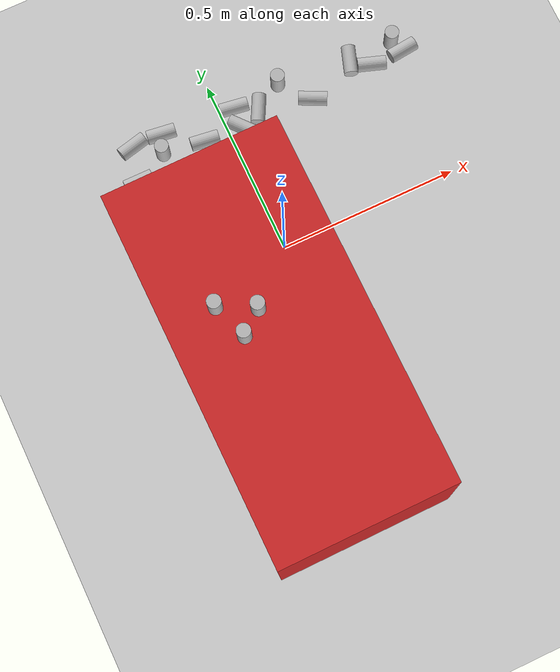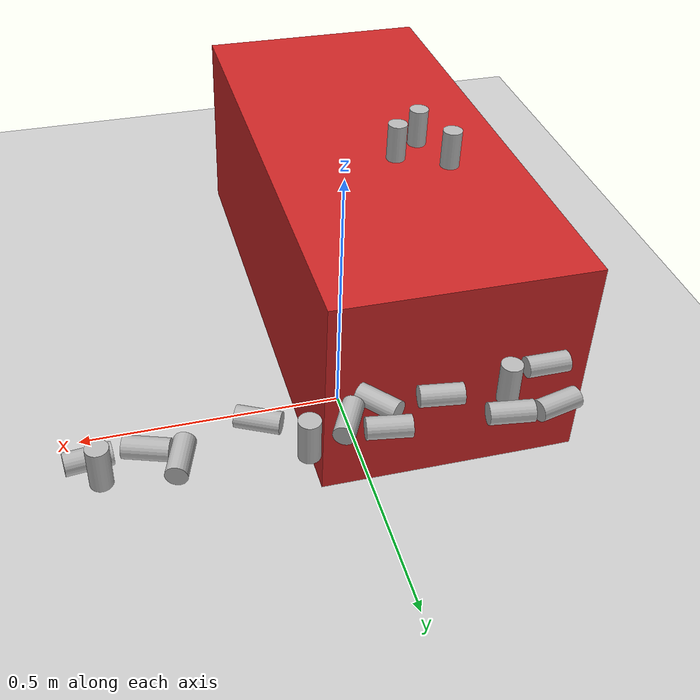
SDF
<sdf version="1.7">
 <world name="default">
  <model name="ground_plane">
   <static>1</static>
   <link name="link">
    <collision name="collision">
     <geometry><plane><normal>0 0 1</normal><size>100 100</size></plane></geometry>
     <surface>
      <contact><collide_bitmask>65535</collide_bitmask></contact>
      <friction><ode><mu>100</mu><mu2>50</mu2></ode></friction>
     </surface>
    </collision>
    <visual name="visual">
     <cast_shadows>0</cast_shadows>
     <geometry><plane><normal>0 0 1</normal><size>100 100</size></plane></geometry>
     <material>
      <script><uri>file://media/materials/scripts/gazebo.material</uri><name>Gazebo/Grey</name></script>
     </material>
    </visual>
   </link>
  </model>
  <model name="robot_station">
   <static>1</static>
   <link name="link">
    <inertial>
     <mass>100</mass>
     <inertia>
      <ixx>0.166667</ixx>
      <ixy>0</ixy>
      <ixz>0</ixz>
      <iyy>0.166667</iyy>
      <iyz>0</iyz>
      <izz>0.166667</izz>
     </inertia>
    </inertial>
    <visual name="visual">
     <geometry><box><size>0.477763 1.00606 0.398553</size></box></geometry>
     <material>
      <script><name>Gazebo/Red</name><uri>file://media/materials/scripts/gazebo.material</uri></script>
      <shader type="pixel"/>
     </material>
    </visual>
    <collision name="collision">
     <geometry><box><size>0.477763 1.00606 0.398553</size></box></geometry>
     <surface>
      <friction>
       <ode><mu>1</mu><mu2>1</mu2><fdir1>0 0 0</fdir1><slip1>0</slip1><slip2>0</slip2></ode>
       <torsional>
        <coefficient>1</coefficient>
        <patch_radius>0</patch_radius>
        <surface_radius>0</surface_radius>
        <use_patch_radius>1</use_patch_radius>
        <ode><slip>0</slip></ode>
       </torsional>
      </friction>
      <bounce><restitution_coefficient>0</restitution_coefficient><threshold>1e+06</threshold></bounce>
      <contact>
       <collide_without_contact>0</collide_without_contact>
       <collide_without_contact_bitmask>1</collide_without_contact_bitmask>
       <collide_bitmask>1</collide_bitmask>
       <ode>
        <soft_cfm>0</soft_cfm>
        <soft_erp>0.2</soft_erp>
        <kp>1e+13</kp>
        <kd>1</kd>
        <max_vel>0.01</max_vel>
        <min_depth>0</min_depth>
       </ode>
       <bullet>
        <split_impulse>1</split_impulse>
        <split_impulse_penetration_threshold>-0.01</split_impulse_penetration_threshold>
        <soft_cfm>0</soft_cfm>
        <soft_erp>0.2</soft_erp>
        <kp>1e+13</kp>
        <kd>1</kd>
       </bullet>
      </contact>
     </surface>
    </collision>
   </link>
   <pose>-0.148839 -0.291094 0.199608 -1e-06 -0.011075 0.008285</pose>
  </model>
  <model name="sprite">
   <link name="link_0">
    <inertial>
     <mass>0.00147636</mass>
     <inertia>
      <ixx>4.89601e-06</ixx>
      <ixy>0</ixy>
      <ixz>0</ixz>
      <iyy>4.89601e-06</iyy>
      <iyz>0</iyz>
      <izz>1.48331e-06</izz>
     </inertia>
    </inertial>
    <visual name="visual">
     <geometry><cylinder><radius>0.018402</radius><length>0.074444</length></cylinder></geometry>
     <material>
      <lighting>1</lighting>
      <script>
       <uri>model://sprite/materials/scripts</uri>
       <uri>model://sprite/materials/textures</uri>
       <name>sprite</name>
      </script>
      <shader type="pixel"/>
     </material>
    </visual>
    <collision name="collision">
     <geometry><cylinder><radius>0.018402</radius><length>0.074444</length></cylinder></geometry>
     <surface>
      <friction>
       <ode><mu>1</mu><mu2>1</mu2><fdir1>0 0 0</fdir1><slip1>0</slip1><slip2>0</slip2></ode>
       <torsional>
        <coefficient>1</coefficient>
        <patch_radius>0</patch_radius>
        <surface_radius>0</surface_radius>
        <use_patch_radius>1</use_patch_radius>
        <ode><slip>0</slip></ode>
       </torsional>
      </friction>
      <bounce><restitution_coefficient>0</restitution_coefficient><threshold>1e+06</threshold></bounce>
      <contact>
       <collide_without_contact>0</collide_without_contact>
       <collide_without_contact_bitmask>1</collide_without_contact_bitmask>
       <collide_bitmask>1</collide_bitmask>
       <ode>
        <soft_cfm>0</soft_cfm>
        <soft_erp>0.2</soft_erp>
        <kp>1e+13</kp>
        <kd>1</kd>
        <max_vel>0.01</max_vel>
        <min_depth>0</min_depth>
       </ode>
       <bullet>
        <split_impulse>1</split_impulse>
        <split_impulse_penetration_threshold>-0.01</split_impulse_penetration_threshold>
        <soft_cfm>0</soft_cfm>
        <soft_erp>0.2</soft_erp>
        <kp>1e+13</kp>
        <kd>1</kd>
       </bullet>
      </contact>
     </surface>
    </collision>
   </link>
   <static>0</static>
   <pose>-0.221494 -0.259296 0.435314 0.000233 -0.011327 -0.004647</pose>
  </model>
  <model name="pepsi_0">
   <link name="link_0">
    <inertial>
     <mass>0.00147636</mass>
     <inertia>
      <ixx>4.89601e-06</ixx>
      <ixy>0</ixy>
      <ixz>0</ixz>
      <iyy>4.89601e-06</iyy>
      <iyz>0</iyz>
      <izz>1.48331e-06</izz>
     </inertia>
    </inertial>
    <visual name="visual">
     <geometry><cylinder><radius>0.018402</radius><length>0.074444</length></cylinder></geometry>
     <material>
      <lighting>1</lighting>
      <script>
       <uri>model://pepsi/materials/scripts</uri>
       <uri>model://pepsi/materials/textures</uri>
       <name>pepsi</name>
      </script>
      <shader type="pixel"/>
     </material>
    </visual>
    <collision name="collision">
     <geometry><cylinder><radius>0.018402</radius><length>0.074444</length></cylinder></geometry>
     <surface>
      <friction>
       <ode><mu>1</mu><mu2>1</mu2><fdir1>0 0 0</fdir1><slip1>0</slip1><slip2>0</slip2></ode>
       <torsional>
        <coefficient>1</coefficient>
        <patch_radius>0</patch_radius>
        <surface_radius>0</surface_radius>
        <use_patch_radius>1</use_patch_radius>
        <ode><slip>0</slip></ode>
       </torsional>
      </friction>
      <bounce><restitution_coefficient>0</restitution_coefficient><threshold>1e+06</threshold></bounce>
      <contact>
       <collide_without_contact>0</collide_without_contact>
       <collide_without_contact_bitmask>1</collide_without_contact_bitmask>
       <collide_bitmask>1</collide_bitmask>
       <ode>
        <soft_cfm>0</soft_cfm>
        <soft_erp>0.2</soft_erp>
        <kp>1e+13</kp>
        <kd>1</kd>
        <max_vel>0.01</max_vel>
        <min_depth>0</min_depth>
       </ode>
       <bullet>
        <split_impulse>1</split_impulse>
        <split_impulse_penetration_threshold>-0.01</split_impulse_penetration_threshold>
        <soft_cfm>0</soft_cfm>
        <soft_erp>0.2</soft_erp>
        <kp>1e+13</kp>
        <kd>1</kd>
       </bullet>
      </contact>
     </surface>
    </collision>
   </link>
   <static>0</static>
   <pose>-0.163639 -0.212135 0.435959 0.000239 -0.01133 -0.006572</pose>
  </model>
  <model name="coke_0">
   <link name="link_0">
    <inertial>
     <mass>0.00147636</mass>
     <inertia>
      <ixx>4.89601e-06</ixx>
      <ixy>0</ixy>
      <ixz>0</ixz>
      <iyy>4.89601e-06</iyy>
      <iyz>0</iyz>
      <izz>1.48331e-06</izz>
     </inertia>
    </inertial>
    <visual name="visual">
     <geometry><cylinder><radius>0.018402</radius><length>0.074444</length></cylinder></geometry>
     <material>
      <lighting>1</lighting>
      <script>
       <uri>model://coke/materials/scripts</uri>
       <uri>model://coke/materials/textures</uri>
       <name>coke</name>
      </script>
      <shader type="pixel"/>
     </material>
    </visual>
    <collision name="collision">
     <geometry><cylinder><radius>0.018402</radius><length>0.074444</length></cylinder></geometry>
     <surface>
      <friction>
       <ode><mu>1</mu><mu2>1</mu2><fdir1>0 0 0</fdir1><slip1>0</slip1><slip2>0</slip2></ode>
       <torsional>
        <coefficient>1</coefficient>
        <patch_radius>0</patch_radius>
        <surface_radius>0</surface_radius>
        <use_patch_radius>1</use_patch_radius>
        <ode><slip>0</slip></ode>
       </torsional>
      </friction>
      <bounce><restitution_coefficient>0</restitution_coefficient><threshold>1e+06</threshold></bounce>
      <contact>
       <collide_without_contact>0</collide_without_contact>
       <collide_without_contact_bitmask>1</collide_without_contact_bitmask>
       <collide_bitmask>1</collide_bitmask>
       <ode>
        <soft_cfm>0</soft_cfm>
        <soft_erp>0.2</soft_erp>
        <kp>1e+13</kp>
        <kd>1</kd>
        <max_vel>0.01</max_vel>
        <min_depth>0</min_depth>
       </ode>
       <bullet>
        <split_impulse>1</split_impulse>
        <split_impulse_penetration_threshold>-0.01</split_impulse_penetration_threshold>
        <soft_cfm>0</soft_cfm>
        <soft_erp>0.2</soft_erp>
        <kp>1e+13</kp>
        <kd>1</kd>
       </bullet>
      </contact>
     </surface>
    </collision>
   </link>
   <static>0</static>
   <pose>-0.255563 -0.16538 0.434945 0.000315 -0.011288 -0.012086</pose>
  </model>
  <model name="obj_s_1">
   <link name="link_0">
    <inertial>
     <mass>0.00147636</mass>
     <inertia>
      <ixx>4.89601e-06</ixx>
      <ixy>0</ixy>
      <ixz>0</ixz>
      <iyy>4.89601e-06</iyy>
      <iyz>0</iyz>
      <izz>1.48331e-06</izz>
     </inertia>
    </inertial>
    <visual name="visual">
     <geometry><cylinder><radius>0.018402</radius><length>0.074444</length></cylinder></geometry>
     <material>
      <lighting>1</lighting>
      <script>
       <uri>model://sprite/materials/scripts</uri>
       <uri>model://sprite/materials/textures</uri>
       <name>sprite</name>
      </script>
      <shader type="pixel"/>
     </material>
    </visual>
    <collision name="collision">
     <geometry><cylinder><radius>0.018402</radius><length>0.074444</length></cylinder></geometry>
     <surface>
      <friction>
       <ode><mu>1</mu><mu2>1</mu2><fdir1>0 0 0</fdir1><slip1>0</slip1><slip2>0</slip2></ode>
       <torsional>
        <coefficient>1</coefficient>
        <patch_radius>0</patch_radius>
        <surface_radius>0</surface_radius>
        <use_patch_radius>1</use_patch_radius>
        <ode><slip>0</slip></ode>
       </torsional>
      </friction>
      <bounce><restitution_coefficient>0</restitution_coefficient><threshold>1e+06</threshold></bounce>
      <contact>
       <collide_without_contact>0</collide_without_contact>
       <collide_without_contact_bitmask>1</collide_without_contact_bitmask>
       <collide_bitmask>1</collide_bitmask>
       <ode>
        <soft_cfm>0</soft_cfm>
        <soft_erp>0.2</soft_erp>
        <kp>1e+13</kp>
        <kd>1</kd>
        <max_vel>0.01</max_vel>
        <min_depth>0</min_depth>
       </ode>
       <bullet>
        <split_impulse>1</split_impulse>
        <split_impulse_penetration_threshold>-0.01</split_impulse_penetration_threshold>
        <soft_cfm>0</soft_cfm>
        <soft_erp>0.2</soft_erp>
        <kp>1e+13</kp>
        <kd>1</kd>
       </bullet>
      </contact>
     </surface>
    </collision>
   </link>
   <static>0</static>
   <pose>-0.2646 0.345325 0.249047 1.57073 -0.952484 -1.3369</pose>
  </model>
  <model name="obj_s_2">
   <link name="link_0">
    <inertial>
     <mass>0.00147636</mass>
     <inertia>
      <ixx>4.89601e-06</ixx>
      <ixy>0</ixy>
      <ixz>0</ixz>
      <iyy>4.89601e-06</iyy>
      <iyz>0</iyz>
      <izz>1.48331e-06</izz>
     </inertia>
    </inertial>
    <visual name="visual">
     <geometry><cylinder><radius>0.018402</radius><length>0.074444</length></cylinder></geometry>
     <material>
      <lighting>1</lighting>
      <script>
       <uri>model://sprite/materials/scripts</uri>
       <uri>model://sprite/materials/textures</uri>
       <name>sprite</name>
      </script>
      <shader type="pixel"/>
     </material>
    </visual>
    <collision name="collision">
     <geometry><cylinder><radius>0.018402</radius><length>0.074444</length></cylinder></geometry>
     <surface>
      <friction>
       <ode><mu>1</mu><mu2>1</mu2><fdir1>0 0 0</fdir1><slip1>0</slip1><slip2>0</slip2></ode>
       <torsional>
        <coefficient>1</coefficient>
        <patch_radius>0</patch_radius>
        <surface_radius>0</surface_radius>
        <use_patch_radius>1</use_patch_radius>
        <ode><slip>0</slip></ode>
       </torsional>
      </friction>
      <bounce><restitution_coefficient>0</restitution_coefficient><threshold>1e+06</threshold></bounce>
      <contact>
       <collide_without_contact>0</collide_without_contact>
       <collide_without_contact_bitmask>1</collide_without_contact_bitmask>
       <collide_bitmask>1</collide_bitmask>
       <ode>
        <soft_cfm>0</soft_cfm>
        <soft_erp>0.2</soft_erp>
        <kp>1e+13</kp>
        <kd>1</kd>
        <max_vel>0.01</max_vel>
        <min_depth>0</min_depth>
       </ode>
       <bullet>
        <split_impulse>1</split_impulse>
        <split_impulse_penetration_threshold>-0.01</split_impulse_penetration_threshold>
        <soft_cfm>0</soft_cfm>
        <soft_erp>0.2</soft_erp>
        <kp>1e+13</kp>
        <kd>1</kd>
       </bullet>
      </contact>
     </surface>
    </collision>
   </link>
   <static>0</static>
   <pose>-0.200771 0.297373 0.267882 0.000128 -0.000285 -0.315537</pose>
  </model>
  <model name="obj_s_3">
   <link name="link_0">
    <inertial>
     <mass>0.00147636</mass>
     <inertia>
      <ixx>4.89601e-06</ixx>
      <ixy>0</ixy>
      <ixz>0</ixz>
      <iyy>4.89601e-06</iyy>
      <iyz>0</iyz>
      <izz>1.48331e-06</izz>
     </inertia>
    </inertial>
    <visual name="visual">
     <geometry><cylinder><radius>0.018402</radius><length>0.074444</length></cylinder></geometry>
     <material>
      <lighting>1</lighting>
      <script>
       <uri>model://sprite/materials/scripts</uri>
       <uri>model://sprite/materials/textures</uri>
       <name>sprite</name>
      </script>
      <shader type="pixel"/>
     </material>
    </visual>
    <collision name="collision">
     <geometry><cylinder><radius>0.018402</radius><length>0.074444</length></cylinder></geometry>
     <surface>
      <friction>
       <ode><mu>1</mu><mu2>1</mu2><fdir1>0 0 0</fdir1><slip1>0</slip1><slip2>0</slip2></ode>
       <torsional>
        <coefficient>1</coefficient>
        <patch_radius>0</patch_radius>
        <surface_radius>0</surface_radius>
        <use_patch_radius>1</use_patch_radius>
        <ode><slip>0</slip></ode>
       </torsional>
      </friction>
      <bounce><restitution_coefficient>0</restitution_coefficient><threshold>1e+06</threshold></bounce>
      <contact>
       <collide_without_contact>0</collide_without_contact>
       <collide_without_contact_bitmask>1</collide_without_contact_bitmask>
       <collide_bitmask>1</collide_bitmask>
       <ode>
        <soft_cfm>0</soft_cfm>
        <soft_erp>0.2</soft_erp>
        <kp>1e+13</kp>
        <kd>1</kd>
        <max_vel>0.01</max_vel>
        <min_depth>0</min_depth>
       </ode>
       <bullet>
        <split_impulse>1</split_impulse>
        <split_impulse_penetration_threshold>-0.01</split_impulse_penetration_threshold>
        <soft_cfm>0</soft_cfm>
        <soft_erp>0.2</soft_erp>
        <kp>1e+13</kp>
        <kd>1</kd>
       </bullet>
      </contact>
     </surface>
    </collision>
   </link>
   <static>0</static>
   <pose>-0.090618 0.282021 0.249046 -1.57081 -0.645072 -1.69907</pose>
  </model>
  <model name="obj_s_5">
   <link name="link_0">
    <inertial>
     <mass>0.00147636</mass>
     <inertia>
      <ixx>4.89601e-06</ixx>
      <ixy>0</ixy>
      <ixz>0</ixz>
      <iyy>4.89601e-06</iyy>
      <iyz>0</iyz>
      <izz>1.48331e-06</izz>
     </inertia>
    </inertial>
    <visual name="visual">
     <geometry><cylinder><radius>0.018402</radius><length>0.074444</length></cylinder></geometry>
     <material>
      <lighting>1</lighting>
      <script>
       <uri>model://sprite/materials/scripts</uri>
       <uri>model://sprite/materials/textures</uri>
       <name>sprite</name>
      </script>
      <shader type="pixel"/>
     </material>
    </visual>
    <collision name="collision">
     <geometry><cylinder><radius>0.018402</radius><length>0.074444</length></cylinder></geometry>
     <surface>
      <friction>
       <ode><mu>1</mu><mu2>1</mu2><fdir1>0 0 0</fdir1><slip1>0</slip1><slip2>0</slip2></ode>
       <torsional>
        <coefficient>1</coefficient>
        <patch_radius>0</patch_radius>
        <surface_radius>0</surface_radius>
        <use_patch_radius>1</use_patch_radius>
        <ode><slip>0</slip></ode>
       </torsional>
      </friction>
      <bounce><restitution_coefficient>0</restitution_coefficient><threshold>1e+06</threshold></bounce>
      <contact>
       <collide_without_contact>0</collide_without_contact>
       <collide_without_contact_bitmask>1</collide_without_contact_bitmask>
       <collide_bitmask>1</collide_bitmask>
       <ode>
        <soft_cfm>0</soft_cfm>
        <soft_erp>0.2</soft_erp>
        <kp>1e+13</kp>
        <kd>1</kd>
        <max_vel>0.01</max_vel>
        <min_depth>0</min_depth>
       </ode>
       <bullet>
        <split_impulse>1</split_impulse>
        <split_impulse_penetration_threshold>-0.01</split_impulse_penetration_threshold>
        <soft_cfm>0</soft_cfm>
        <soft_erp>0.2</soft_erp>
        <kp>1e+13</kp>
        <kd>1</kd>
       </bullet>
      </contact>
     </surface>
    </collision>
   </link>
   <static>0</static>
   <pose>-0.288337 0.25268 0.249048 1.57073 0.870032 -1.57085</pose>
  </model>
  <model name="obj_s_8">
   <link name="link_0">
    <inertial>
     <mass>0.00147636</mass>
     <inertia>
      <ixx>4.89601e-06</ixx>
      <ixy>0</ixy>
      <ixz>0</ixz>
      <iyy>4.89601e-06</iyy>
      <iyz>0</iyz>
      <izz>1.48331e-06</izz>
     </inertia>
    </inertial>
    <visual name="visual">
     <geometry><cylinder><radius>0.018402</radius><length>0.074444</length></cylinder></geometry>
     <material>
      <lighting>1</lighting>
      <script>
       <uri>model://sprite/materials/scripts</uri>
       <uri>model://sprite/materials/textures</uri>
       <name>sprite</name>
      </script>
      <shader type="pixel"/>
     </material>
    </visual>
    <collision name="collision">
     <geometry><cylinder><radius>0.018402</radius><length>0.074444</length></cylinder></geometry>
     <surface>
      <friction>
       <ode><mu>1</mu><mu2>1</mu2><fdir1>0 0 0</fdir1><slip1>0</slip1><slip2>0</slip2></ode>
       <torsional>
        <coefficient>1</coefficient>
        <patch_radius>0</patch_radius>
        <surface_radius>0</surface_radius>
        <use_patch_radius>1</use_patch_radius>
        <ode><slip>0</slip></ode>
       </torsional>
      </friction>
      <bounce><restitution_coefficient>0</restitution_coefficient><threshold>1e+06</threshold></bounce>
      <contact>
       <collide_without_contact>0</collide_without_contact>
       <collide_without_contact_bitmask>1</collide_without_contact_bitmask>
       <collide_bitmask>1</collide_bitmask>
       <ode>
        <soft_cfm>0</soft_cfm>
        <soft_erp>0.2</soft_erp>
        <kp>1e+13</kp>
        <kd>1</kd>
        <max_vel>0.01</max_vel>
        <min_depth>0</min_depth>
       </ode>
       <bullet>
        <split_impulse>1</split_impulse>
        <split_impulse_penetration_threshold>-0.01</split_impulse_penetration_threshold>
        <soft_cfm>0</soft_cfm>
        <soft_erp>0.2</soft_erp>
        <kp>1e+13</kp>
        <kd>1</kd>
       </bullet>
      </contact>
     </surface>
    </collision>
   </link>
   <static>0</static>
   <pose>-0.184685 0.345709 0.249055 -1.57074 0.864661 -1.69952</pose>
  </model>
  <model name="obj_p_0">
   <link name="link_0">
    <inertial>
     <mass>0.00147636</mass>
     <inertia>
      <ixx>4.89601e-06</ixx>
      <ixy>0</ixy>
      <ixz>0</ixz>
      <iyy>4.89601e-06</iyy>
      <iyz>0</iyz>
      <izz>1.48331e-06</izz>
     </inertia>
    </inertial>
    <visual name="visual">
     <geometry><cylinder><radius>0.018402</radius><length>0.074444</length></cylinder></geometry>
     <material>
      <lighting>1</lighting>
      <script>
       <uri>model://pepsi/materials/scripts</uri>
       <uri>model://pepsi/materials/textures</uri>
       <name>pepsi</name>
      </script>
      <shader type="pixel"/>
     </material>
    </visual>
    <collision name="collision">
     <geometry><cylinder><radius>0.018402</radius><length>0.074444</length></cylinder></geometry>
     <surface>
      <friction>
       <ode><mu>1</mu><mu2>1</mu2><fdir1>0 0 0</fdir1><slip1>0</slip1><slip2>0</slip2></ode>
       <torsional>
        <coefficient>1</coefficient>
        <patch_radius>0</patch_radius>
        <surface_radius>0</surface_radius>
        <use_patch_radius>1</use_patch_radius>
        <ode><slip>0</slip></ode>
       </torsional>
      </friction>
      <bounce><restitution_coefficient>0</restitution_coefficient><threshold>1e+06</threshold></bounce>
      <contact>
       <collide_without_contact>0</collide_without_contact>
       <collide_without_contact_bitmask>1</collide_without_contact_bitmask>
       <collide_bitmask>1</collide_bitmask>
       <ode>
        <soft_cfm>0</soft_cfm>
        <soft_erp>0.2</soft_erp>
        <kp>1e+13</kp>
        <kd>1</kd>
        <max_vel>0.01</max_vel>
        <min_depth>0</min_depth>
       </ode>
       <bullet>
        <split_impulse>1</split_impulse>
        <split_impulse_penetration_threshold>-0.01</split_impulse_penetration_threshold>
        <soft_cfm>0</soft_cfm>
        <soft_erp>0.2</soft_erp>
        <kp>1e+13</kp>
        <kd>1</kd>
       </bullet>
      </contact>
     </surface>
    </collision>
   </link>
   <static>0</static>
   <pose>0.208384 0.267439 0.249056 1.5708 0.67739 -2.03292</pose>
  </model>
  <model name="obj_p_1">
   <link name="link_0">
    <inertial>
     <mass>0.00147636</mass>
     <inertia>
      <ixx>4.89601e-06</ixx>
      <ixy>0</ixy>
      <ixz>0</ixz>
      <iyy>4.89601e-06</iyy>
      <iyz>0</iyz>
      <izz>1.48331e-06</izz>
     </inertia>
    </inertial>
    <visual name="visual">
     <geometry><cylinder><radius>0.018402</radius><length>0.074444</length></cylinder></geometry>
     <material>
      <lighting>1</lighting>
      <script>
       <uri>model://pepsi/materials/scripts</uri>
       <uri>model://pepsi/materials/textures</uri>
       <name>pepsi</name>
      </script>
      <shader type="pixel"/>
     </material>
    </visual>
    <collision name="collision">
     <geometry><cylinder><radius>0.018402</radius><length>0.074444</length></cylinder></geometry>
     <surface>
      <friction>
       <ode><mu>1</mu><mu2>1</mu2><fdir1>0 0 0</fdir1><slip1>0</slip1><slip2>0</slip2></ode>
       <torsional>
        <coefficient>1</coefficient>
        <patch_radius>0</patch_radius>
        <surface_radius>0</surface_radius>
        <use_patch_radius>1</use_patch_radius>
        <ode><slip>0</slip></ode>
       </torsional>
      </friction>
      <bounce><restitution_coefficient>0</restitution_coefficient><threshold>1e+06</threshold></bounce>
      <contact>
       <collide_without_contact>0</collide_without_contact>
       <collide_without_contact_bitmask>1</collide_without_contact_bitmask>
       <collide_bitmask>1</collide_bitmask>
       <ode>
        <soft_cfm>0</soft_cfm>
        <soft_erp>0.2</soft_erp>
        <kp>1e+13</kp>
        <kd>1</kd>
        <max_vel>0.01</max_vel>
        <min_depth>0</min_depth>
       </ode>
       <bullet>
        <split_impulse>1</split_impulse>
        <split_impulse_penetration_threshold>-0.01</split_impulse_penetration_threshold>
        <soft_cfm>0</soft_cfm>
        <soft_erp>0.2</soft_erp>
        <kp>1e+13</kp>
        <kd>1</kd>
       </bullet>
      </contact>
     </surface>
    </collision>
   </link>
   <static>0</static>
   <pose>0.144429 0.34408 0.26788 8.2e-05 -0.000226 -0.155962</pose>
  </model>
  <model name="obj_p_4">
   <link name="link_0">
    <inertial>
     <mass>0.00147636</mass>
     <inertia>
      <ixx>4.89601e-06</ixx>
      <ixy>0</ixy>
      <ixz>0</ixz>
      <iyy>4.89601e-06</iyy>
      <iyz>0</iyz>
      <izz>1.48331e-06</izz>
     </inertia>
    </inertial>
    <visual name="visual">
     <geometry><cylinder><radius>0.018402</radius><length>0.074444</length></cylinder></geometry>
     <material>
      <lighting>1</lighting>
      <script>
       <uri>model://pepsi/materials/scripts</uri>
       <uri>model://pepsi/materials/textures</uri>
       <name>pepsi</name>
      </script>
      <shader type="pixel"/>
     </material>
    </visual>
    <collision name="collision">
     <geometry><cylinder><radius>0.018402</radius><length>0.074444</length></cylinder></geometry>
     <surface>
      <friction>
       <ode><mu>1</mu><mu2>1</mu2><fdir1>0 0 0</fdir1><slip1>0</slip1><slip2>0</slip2></ode>
       <torsional>
        <coefficient>1</coefficient>
        <patch_radius>0</patch_radius>
        <surface_radius>0</surface_radius>
        <use_patch_radius>1</use_patch_radius>
        <ode><slip>0</slip></ode>
       </torsional>
      </friction>
      <bounce><restitution_coefficient>0</restitution_coefficient><threshold>1e+06</threshold></bounce>
      <contact>
       <collide_without_contact>0</collide_without_contact>
       <collide_without_contact_bitmask>1</collide_without_contact_bitmask>
       <collide_bitmask>1</collide_bitmask>
       <ode>
        <soft_cfm>0</soft_cfm>
        <soft_erp>0.2</soft_erp>
        <kp>1e+13</kp>
        <kd>1</kd>
        <max_vel>0.01</max_vel>
        <min_depth>0</min_depth>
       </ode>
       <bullet>
        <split_impulse>1</split_impulse>
        <split_impulse_penetration_threshold>-0.01</split_impulse_penetration_threshold>
        <soft_cfm>0</soft_cfm>
        <soft_erp>0.2</soft_erp>
        <kp>1e+13</kp>
        <kd>1</kd>
       </bullet>
      </contact>
     </surface>
    </collision>
   </link>
   <static>0</static>
   <pose>0.011946 0.274612 0.249056 -1.5708 0.617127 0.698824</pose>
  </model>
  <model name="obj_p_5">
   <link name="link_0">
    <inertial>
     <mass>0.00147636</mass>
     <inertia>
      <ixx>4.89601e-06</ixx>
      <ixy>0</ixy>
      <ixz>0</ixz>
      <iyy>4.89601e-06</iyy>
      <iyz>0</iyz>
      <izz>1.48331e-06</izz>
     </inertia>
    </inertial>
    <visual name="visual">
     <geometry><cylinder><radius>0.018402</radius><length>0.074444</length></cylinder></geometry>
     <material>
      <lighting>1</lighting>
      <script>
       <uri>model://pepsi/materials/scripts</uri>
       <uri>model://pepsi/materials/textures</uri>
       <name>pepsi</name>
      </script>
      <shader type="pixel"/>
     </material>
    </visual>
    <collision name="collision">
     <geometry><cylinder><radius>0.018402</radius><length>0.074444</length></cylinder></geometry>
     <surface>
      <friction>
       <ode><mu>1</mu><mu2>1</mu2><fdir1>0 0 0</fdir1><slip1>0</slip1><slip2>0</slip2></ode>
       <torsional>
        <coefficient>1</coefficient>
        <patch_radius>0</patch_radius>
        <surface_radius>0</surface_radius>
        <use_patch_radius>1</use_patch_radius>
        <ode><slip>0</slip></ode>
       </torsional>
      </friction>
      <bounce><restitution_coefficient>0</restitution_coefficient><threshold>1e+06</threshold></bounce>
      <contact>
       <collide_without_contact>0</collide_without_contact>
       <collide_without_contact_bitmask>1</collide_without_contact_bitmask>
       <collide_bitmask>1</collide_bitmask>
       <ode>
        <soft_cfm>0</soft_cfm>
        <soft_erp>0.2</soft_erp>
        <kp>1e+13</kp>
        <kd>1</kd>
        <max_vel>0.01</max_vel>
        <min_depth>0</min_depth>
       </ode>
       <bullet>
        <split_impulse>1</split_impulse>
        <split_impulse_penetration_threshold>-0.01</split_impulse_penetration_threshold>
        <soft_cfm>0</soft_cfm>
        <soft_erp>0.2</soft_erp>
        <kp>1e+13</kp>
        <kd>1</kd>
       </bullet>
      </contact>
     </surface>
    </collision>
   </link>
   <static>0</static>
   <pose>0.07028 0.302008 0.249054 1.57086 -1.27496 -0.482649</pose>
  </model>
  <model name="obj_p_8">
   <link name="link_0">
    <inertial>
     <mass>0.00147636</mass>
     <inertia>
      <ixx>4.89601e-06</ixx>
      <ixy>0</ixy>
      <ixz>0</ixz>
      <iyy>4.89601e-06</iyy>
      <iyz>0</iyz>
      <izz>1.48331e-06</izz>
     </inertia>
    </inertial>
    <visual name="visual">
     <geometry><cylinder><radius>0.018402</radius><length>0.074444</length></cylinder></geometry>
     <material>
      <lighting>1</lighting>
      <script>
       <uri>model://pepsi/materials/scripts</uri>
       <uri>model://pepsi/materials/textures</uri>
       <name>pepsi</name>
      </script>
      <shader type="pixel"/>
     </material>
    </visual>
    <collision name="collision">
     <geometry><cylinder><radius>0.018402</radius><length>0.074444</length></cylinder></geometry>
     <surface>
      <friction>
       <ode><mu>1</mu><mu2>1</mu2><fdir1>0 0 0</fdir1><slip1>0</slip1><slip2>0</slip2></ode>
       <torsional>
        <coefficient>1</coefficient>
        <patch_radius>0</patch_radius>
        <surface_radius>0</surface_radius>
        <use_patch_radius>1</use_patch_radius>
        <ode><slip>0</slip></ode>
       </torsional>
      </friction>
      <bounce><restitution_coefficient>0</restitution_coefficient><threshold>1e+06</threshold></bounce>
      <contact>
       <collide_without_contact>0</collide_without_contact>
       <collide_without_contact_bitmask>1</collide_without_contact_bitmask>
       <collide_bitmask>1</collide_bitmask>
       <ode>
        <soft_cfm>0</soft_cfm>
        <soft_erp>0.2</soft_erp>
        <kp>1e+13</kp>
        <kd>1</kd>
        <max_vel>0.01</max_vel>
        <min_depth>0</min_depth>
       </ode>
       <bullet>
        <split_impulse>1</split_impulse>
        <split_impulse_penetration_threshold>-0.01</split_impulse_penetration_threshold>
        <soft_cfm>0</soft_cfm>
        <soft_erp>0.2</soft_erp>
        <kp>1e+13</kp>
        <kd>1</kd>
       </bullet>
      </contact>
     </surface>
    </collision>
   </link>
   <static>0</static>
   <pose>0.013568 0.331869 0.249053 1.57088 -0.491268 -1.71825</pose>
  </model>
  <model name="obj_c_2">
   <link name="link_0">
    <inertial>
     <mass>0.00147636</mass>
     <inertia>
      <ixx>4.89601e-06</ixx>
      <ixy>0</ixy>
      <ixz>0</ixz>
      <iyy>4.89601e-06</iyy>
      <iyz>0</iyz>
      <izz>1.48331e-06</izz>
     </inertia>
    </inertial>
    <visual name="visual">
     <geometry><cylinder><radius>0.018402</radius><length>0.074444</length></cylinder></geometry>
     <material>
      <lighting>1</lighting>
      <script>
       <uri>model://coke/materials/scripts</uri>
       <uri>model://coke/materials/textures</uri>
       <name>coke</name>
      </script>
      <shader type="pixel"/>
     </material>
    </visual>
    <collision name="collision">
     <geometry><cylinder><radius>0.018402</radius><length>0.074444</length></cylinder></geometry>
     <surface>
      <friction>
       <ode><mu>1</mu><mu2>1</mu2><fdir1>0 0 0</fdir1><slip1>0</slip1><slip2>0</slip2></ode>
       <torsional>
        <coefficient>1</coefficient>
        <patch_radius>0</patch_radius>
        <surface_radius>0</surface_radius>
        <use_patch_radius>1</use_patch_radius>
        <ode><slip>0</slip></ode>
       </torsional>
      </friction>
      <bounce><restitution_coefficient>0</restitution_coefficient><threshold>1e+06</threshold></bounce>
      <contact>
       <collide_without_contact>0</collide_without_contact>
       <collide_without_contact_bitmask>1</collide_without_contact_bitmask>
       <collide_bitmask>1</collide_bitmask>
       <ode>
        <soft_cfm>0</soft_cfm>
        <soft_erp>0.2</soft_erp>
        <kp>1e+13</kp>
        <kd>1</kd>
        <max_vel>0.01</max_vel>
        <min_depth>0</min_depth>
       </ode>
       <bullet>
        <split_impulse>1</split_impulse>
        <split_impulse_penetration_threshold>-0.01</split_impulse_penetration_threshold>
        <soft_cfm>0</soft_cfm>
        <soft_erp>0.2</soft_erp>
        <kp>1e+13</kp>
        <kd>1</kd>
       </bullet>
      </contact>
     </surface>
    </collision>
   </link>
   <static>0</static>
   <pose>0.387335 0.288112 0.249053 -1.55784 -1.56997 1.22974</pose>
  </model>
  <model name="obj_c_3">
   <link name="link_0">
    <inertial>
     <mass>0.00147636</mass>
     <inertia>
      <ixx>4.89601e-06</ixx>
      <ixy>0</ixy>
      <ixz>0</ixz>
      <iyy>4.89601e-06</iyy>
      <iyz>0</iyz>
      <izz>1.48331e-06</izz>
     </inertia>
    </inertial>
    <visual name="visual">
     <geometry><cylinder><radius>0.018402</radius><length>0.074444</length></cylinder></geometry>
     <material>
      <lighting>1</lighting>
      <script>
       <uri>model://coke/materials/scripts</uri>
       <uri>model://coke/materials/textures</uri>
       <name>coke</name>
      </script>
      <shader type="pixel"/>
     </material>
    </visual>
    <collision name="collision">
     <geometry><cylinder><radius>0.018402</radius><length>0.074444</length></cylinder></geometry>
     <surface>
      <friction>
       <ode><mu>1</mu><mu2>1</mu2><fdir1>0 0 0</fdir1><slip1>0</slip1><slip2>0</slip2></ode>
       <torsional>
        <coefficient>1</coefficient>
        <patch_radius>0</patch_radius>
        <surface_radius>0</surface_radius>
        <use_patch_radius>1</use_patch_radius>
        <ode><slip>0</slip></ode>
       </torsional>
      </friction>
      <bounce><restitution_coefficient>0</restitution_coefficient><threshold>1e+06</threshold></bounce>
      <contact>
       <collide_without_contact>0</collide_without_contact>
       <collide_without_contact_bitmask>1</collide_without_contact_bitmask>
       <collide_bitmask>1</collide_bitmask>
       <ode>
        <soft_cfm>0</soft_cfm>
        <soft_erp>0.2</soft_erp>
        <kp>1e+13</kp>
        <kd>1</kd>
        <max_vel>0.01</max_vel>
        <min_depth>0</min_depth>
       </ode>
       <bullet>
        <split_impulse>1</split_impulse>
        <split_impulse_penetration_threshold>-0.01</split_impulse_penetration_threshold>
        <soft_cfm>0</soft_cfm>
        <soft_erp>0.2</soft_erp>
        <kp>1e+13</kp>
        <kd>1</kd>
       </bullet>
      </contact>
     </surface>
    </collision>
   </link>
   <static>0</static>
   <pose>0.460613 0.325434 0.267872 3.14157 -0.00032 0.831551</pose>
  </model>
  <model name="obj_c_5">
   <link name="link_0">
    <inertial>
     <mass>0.00147636</mass>
     <inertia>
      <ixx>4.89601e-06</ixx>
      <ixy>0</ixy>
      <ixz>0</ixz>
      <iyy>4.89601e-06</iyy>
      <iyz>0</iyz>
      <izz>1.48331e-06</izz>
     </inertia>
    </inertial>
    <visual name="visual">
     <geometry><cylinder><radius>0.018402</radius><length>0.074444</length></cylinder></geometry>
     <material>
      <lighting>1</lighting>
      <script>
       <uri>model://coke/materials/scripts</uri>
       <uri>model://coke/materials/textures</uri>
       <name>coke</name>
      </script>
      <shader type="pixel"/>
     </material>
    </visual>
    <collision name="collision">
     <geometry><cylinder><radius>0.018402</radius><length>0.074444</length></cylinder></geometry>
     <surface>
      <friction>
       <ode><mu>1</mu><mu2>1</mu2><fdir1>0 0 0</fdir1><slip1>0</slip1><slip2>0</slip2></ode>
       <torsional>
        <coefficient>1</coefficient>
        <patch_radius>0</patch_radius>
        <surface_radius>0</surface_radius>
        <use_patch_radius>1</use_patch_radius>
        <ode><slip>0</slip></ode>
       </torsional>
      </friction>
      <bounce><restitution_coefficient>0</restitution_coefficient><threshold>1e+06</threshold></bounce>
      <contact>
       <collide_without_contact>0</collide_without_contact>
       <collide_without_contact_bitmask>1</collide_without_contact_bitmask>
       <collide_bitmask>1</collide_bitmask>
       <ode>
        <soft_cfm>0</soft_cfm>
        <soft_erp>0.2</soft_erp>
        <kp>1e+13</kp>
        <kd>1</kd>
        <max_vel>0.01</max_vel>
        <min_depth>0</min_depth>
       </ode>
       <bullet>
        <split_impulse>1</split_impulse>
        <split_impulse_penetration_threshold>-0.01</split_impulse_penetration_threshold>
        <soft_cfm>0</soft_cfm>
        <soft_erp>0.2</soft_erp>
        <kp>1e+13</kp>
        <kd>1</kd>
       </bullet>
      </contact>
     </surface>
    </collision>
   </link>
   <static>0</static>
   <pose>0.339597 0.320649 0.249017 -1.5708 0.082637 2.81504</pose>
  </model>
  <model name="obj_c_10">
   <link name="link_0">
    <inertial>
     <mass>0.00147636</mass>
     <inertia>
      <ixx>4.89601e-06</ixx>
      <ixy>0</ixy>
      <ixz>0</ixz>
      <iyy>4.89601e-06</iyy>
      <iyz>0</iyz>
      <izz>1.48331e-06</izz>
     </inertia>
    </inertial>
    <visual name="visual">
     <geometry><cylinder><radius>0.018402</radius><length>0.074444</length></cylinder></geometry>
     <material>
      <lighting>1</lighting>
      <script>
       <uri>model://coke/materials/scripts</uri>
       <uri>model://coke/materials/textures</uri>
       <name>coke</name>
      </script>
      <shader type="pixel"/>
     </material>
    </visual>
    <collision name="collision">
     <geometry><cylinder><radius>0.018402</radius><length>0.074444</length></cylinder></geometry>
     <surface>
      <friction>
       <ode><mu>1</mu><mu2>1</mu2><fdir1>0 0 0</fdir1><slip1>0</slip1><slip2>0</slip2></ode>
       <torsional>
        <coefficient>1</coefficient>
        <patch_radius>0</patch_radius>
        <surface_radius>0</surface_radius>
        <use_patch_radius>1</use_patch_radius>
        <ode><slip>0</slip></ode>
       </torsional>
      </friction>
      <bounce><restitution_coefficient>0</restitution_coefficient><threshold>1e+06</threshold></bounce>
      <contact>
       <collide_without_contact>0</collide_without_contact>
       <collide_without_contact_bitmask>1</collide_without_contact_bitmask>
       <collide_bitmask>1</collide_bitmask>
       <ode>
        <soft_cfm>0</soft_cfm>
        <soft_erp>0.2</soft_erp>
        <kp>1e+13</kp>
        <kd>1</kd>
        <max_vel>0.01</max_vel>
        <min_depth>0</min_depth>
       </ode>
       <bullet>
        <split_impulse>1</split_impulse>
        <split_impulse_penetration_threshold>-0.01</split_impulse_penetration_threshold>
        <soft_cfm>0</soft_cfm>
        <soft_erp>0.2</soft_erp>
        <kp>1e+13</kp>
        <kd>1</kd>
       </bullet>
      </contact>
     </surface>
    </collision>
   </link>
   <static>0</static>
   <pose>0.47622 0.289227 0.249056 1.5708 0.842997 -1.4623</pose>
  </model>
 </world>
</sdf>
